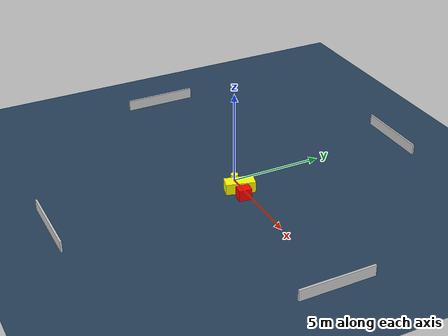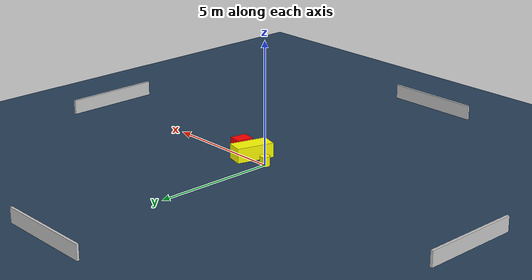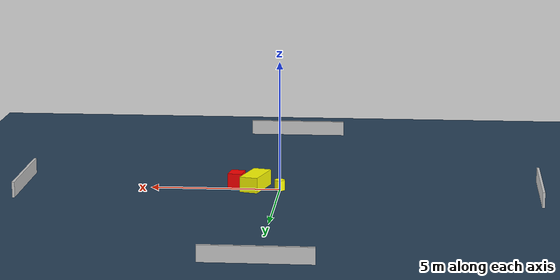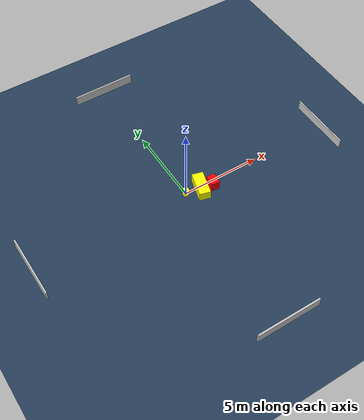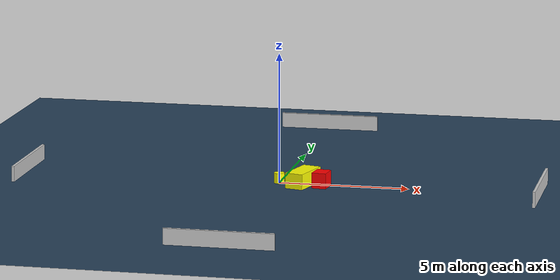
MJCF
<?xml version="1.0" ?>
<mujoco model="generated_environment">
  <option timestep="0.01" integrator="RK4" cone="elliptic"/>
  <default>
    <geom density="1"/>
  </default>
  <asset>
    <texture builtin="gradient" height="3072" name="skybox" rgb1="0.3 0.5 0.7" rgb2="0 0 0" type="skybox" width="512"/>
    <texture builtin="checker" height="300" name="groundplane" rgb1="0.2 0.3 0.4" rgb2="0.1 0.2 0.3" type="2d" width="300"/>
    <material name="groundplane" reflectance="0.2" texrepeat="5 5" texture="groundplane"/>
  </asset>
  <worldbody>
    <light dir="0 0 -1" directional="true" pos="0 0 1.5"/>
    <geom condim="3" friction="0.5 0.005 0.001" material="groundplane" name="floor" pos="0 0 0" size="0 0 0.05" type="plane"/>
    <body name="walls">
      <geom name="wall_1" condim="4" pos="-10.0 0.0 0.3" rgba="0.800000011920929 0.800000011920929 0.800000011920929 1.0" size="0.05 2.0 0.3" type="box"/>
      <geom name="wall_2" condim="4" pos="10.0 0.0 0.3" rgba="0.800000011920929 0.800000011920929 0.800000011920929 1.0" size="0.05 2.0 0.3" type="box"/>
      <geom name="wall_3" condim="4" pos="0.0 -10.0 0.3" rgba="0.800000011920929 0.800000011920929 0.800000011920929 1.0" size="2.0 0.05 0.3" type="box"/>
      <geom name="wall_4" condim="4" pos="0.0 10.0 0.3" rgba="0.800000011920929 0.800000011920929 0.800000011920929 1.0" size="2.0 0.05 0.3" type="box"/>
    </body>
    <body name="robot">
      <joint name="joint_x" type="slide" pos="0 0 0" axis="1 0 0"/>
      <joint name="joint_y" type="slide" pos="0 0 0" axis="0 1 0"/>
      <geom name="robot" type="cylinder" pos="0.0 0.0 0.2" size="0.2 0.2 0.0" mass="5.0" friction="1.0 0.005 0.0001" condim="4" rgba="1.0 1.0 0.0 1.0"/>
    </body>
    <body name="obstacle_1_movable">
      <geom name="obstacle_1_movable" condim="4" pos="0.9577180432016598 -0.18645691285228716 0.3" euler="0 0 344.70015623112965" friction="0.0 0.005 0.001" rgba="1.0 1.0 0.0 1.0" size="0.35248247261075394 0.779093324466235 0.3" type="box" mass="0.1"/>
      <joint type="free"/>
    </body>
    <body name="obstacle_2_static">
      <geom name="obstacle_2_static" condim="4" pos="1.70590696427784 -0.3231135460013956 0.3" euler="0 0 352.8100159734736" friction="0.0 0.005 0.001" rgba="1.0 0.0 0.0 1.0" size="0.27287923059429897 0.3478876045141049 0.3" type="box"/>
    </body>
  </worldbody>
  <actuator>
    <motor name="actuator_x" joint="joint_x" gear="1" ctrlrange="-1 1"/>
    <motor name="actuator_y" joint="joint_y" gear="1" ctrlrange="-1 1"/>
  </actuator>
</mujoco>
